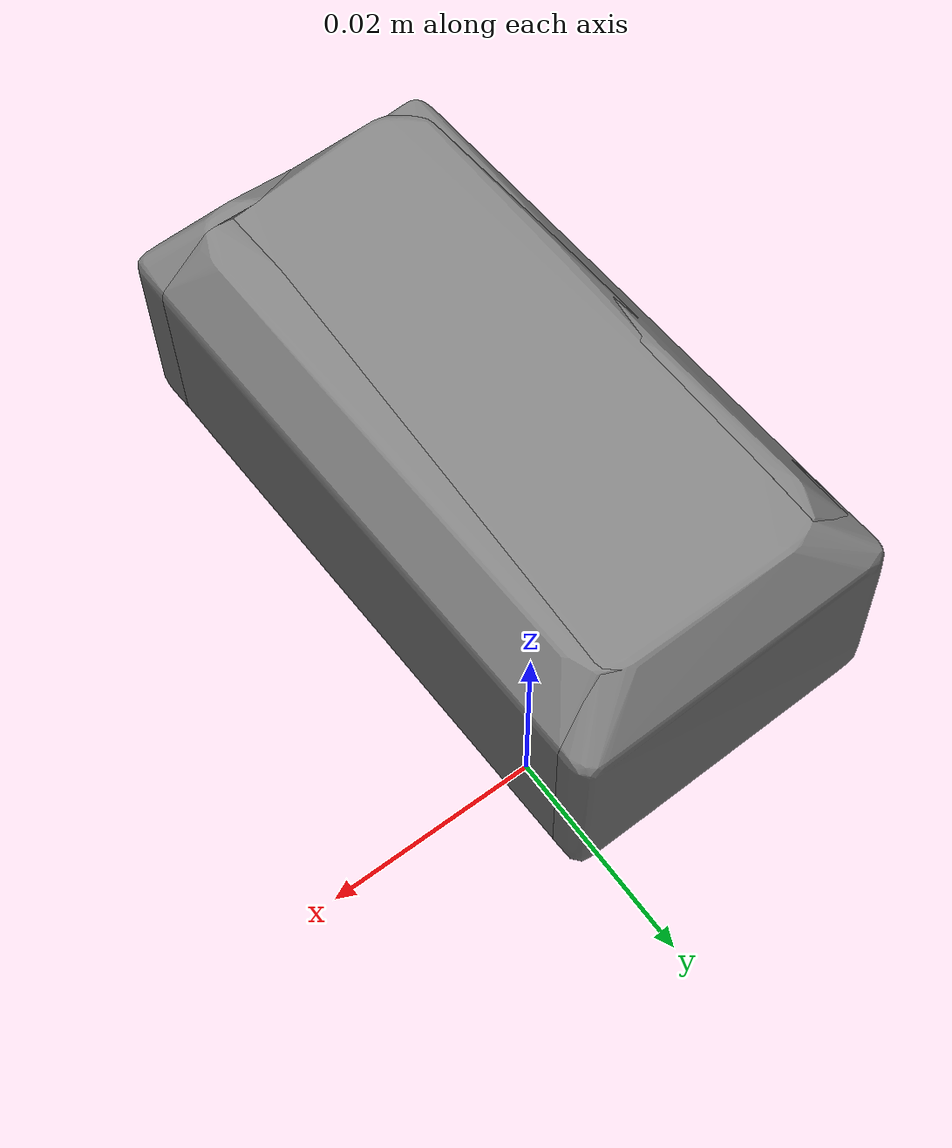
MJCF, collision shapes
<mujoco model="ycb_073-c_lego_duplo">
  <compiler meshdir="meshes" texturedir="meshes" angle="radian"/>
  <default>
    <default class="visual"><geom contype="0" conaffinity="0" group="2" density="0"/></default>
    <default class="collision"><geom group="3"/></default>
  </default>
  <asset>
    <texture name="ycb_073-c_lego_duplo_tex" type="2d" file="ycb_073-c_lego_duplo_texture.png"/>
    <material name="ycb_073-c_lego_duplo_mat" texture="ycb_073-c_lego_duplo_tex" specular="0.2" shininess="0.3"/>
    <mesh name="ycb_073-c_lego_duplo_visual" file="ycb_073-c_lego_duplo_visual.obj"/>
    <mesh name="ycb_073-c_lego_duplo_hull0" file="ycb_073-c_lego_duplo_hull0.obj"/>
    <mesh name="ycb_073-c_lego_duplo_hull1" file="ycb_073-c_lego_duplo_hull1.obj"/>
    <mesh name="ycb_073-c_lego_duplo_hull2" file="ycb_073-c_lego_duplo_hull2.obj"/>
    <mesh name="ycb_073-c_lego_duplo_hull3" file="ycb_073-c_lego_duplo_hull3.obj"/>
    <mesh name="ycb_073-c_lego_duplo_hull4" file="ycb_073-c_lego_duplo_hull4.obj"/>
    <mesh name="ycb_073-c_lego_duplo_hull5" file="ycb_073-c_lego_duplo_hull5.obj"/>
    <mesh name="ycb_073-c_lego_duplo_hull6" file="ycb_073-c_lego_duplo_hull6.obj"/>
    <mesh name="ycb_073-c_lego_duplo_hull7" file="ycb_073-c_lego_duplo_hull7.obj"/>
  </asset>
  <worldbody>
    <body name="object" pos="0 0 0">
      <freejoint name="object_free"/>
      <geom type="mesh" mesh="ycb_073-c_lego_duplo_visual" material="ycb_073-c_lego_duplo_mat" class="visual"/>
      <geom type="mesh" mesh="ycb_073-c_lego_duplo_hull0" class="collision"/>
      <geom type="mesh" mesh="ycb_073-c_lego_duplo_hull1" class="collision"/>
      <geom type="mesh" mesh="ycb_073-c_lego_duplo_hull2" class="collision"/>
      <geom type="mesh" mesh="ycb_073-c_lego_duplo_hull3" class="collision"/>
      <geom type="mesh" mesh="ycb_073-c_lego_duplo_hull4" class="collision"/>
      <geom type="mesh" mesh="ycb_073-c_lego_duplo_hull5" class="collision"/>
      <geom type="mesh" mesh="ycb_073-c_lego_duplo_hull6" class="collision"/>
      <geom type="mesh" mesh="ycb_073-c_lego_duplo_hull7" class="collision"/>
    </body>
  </worldbody>
</mujoco>
